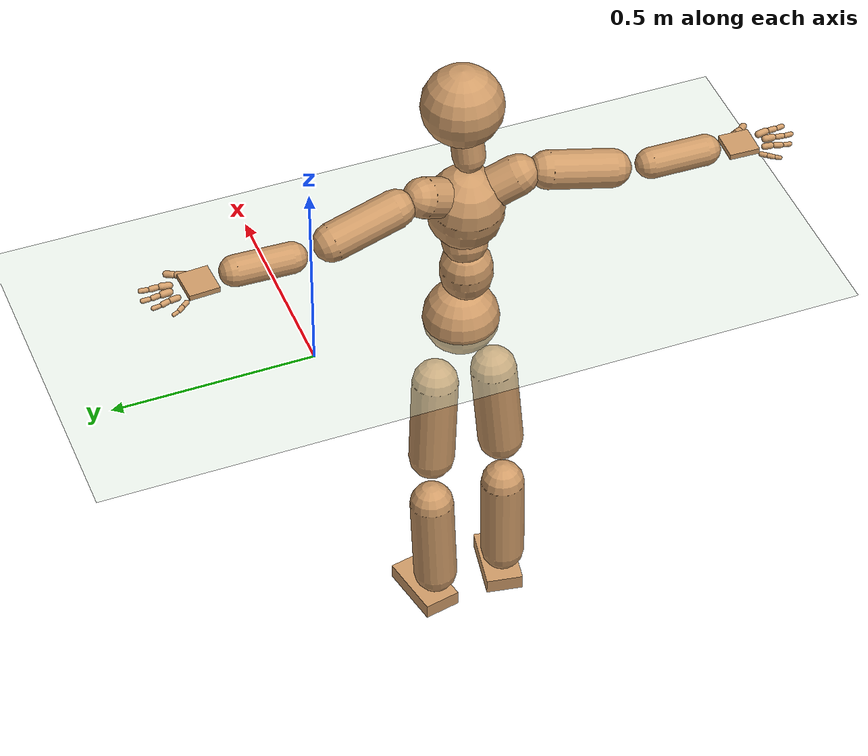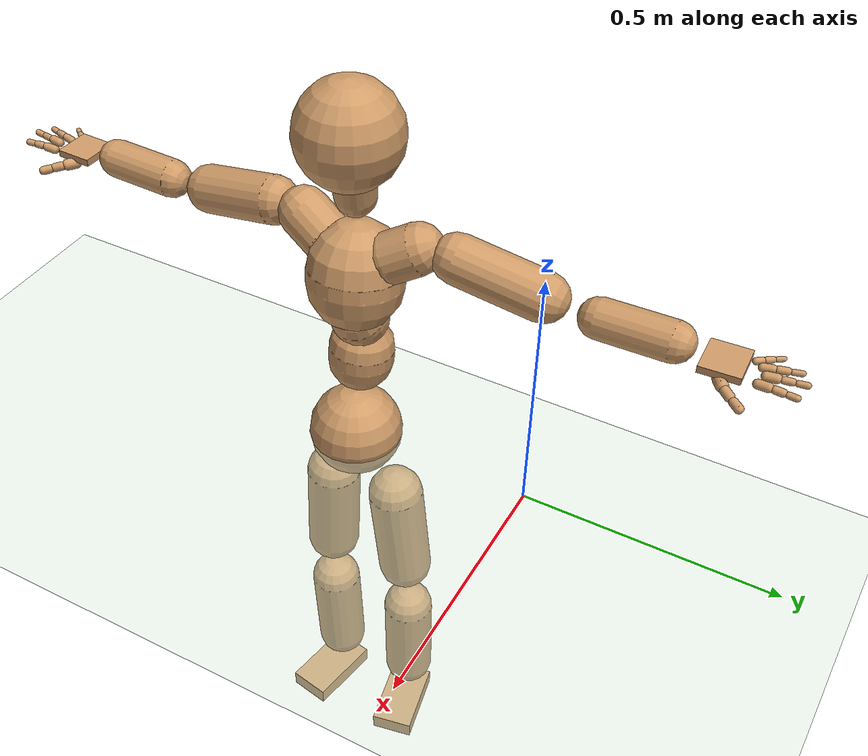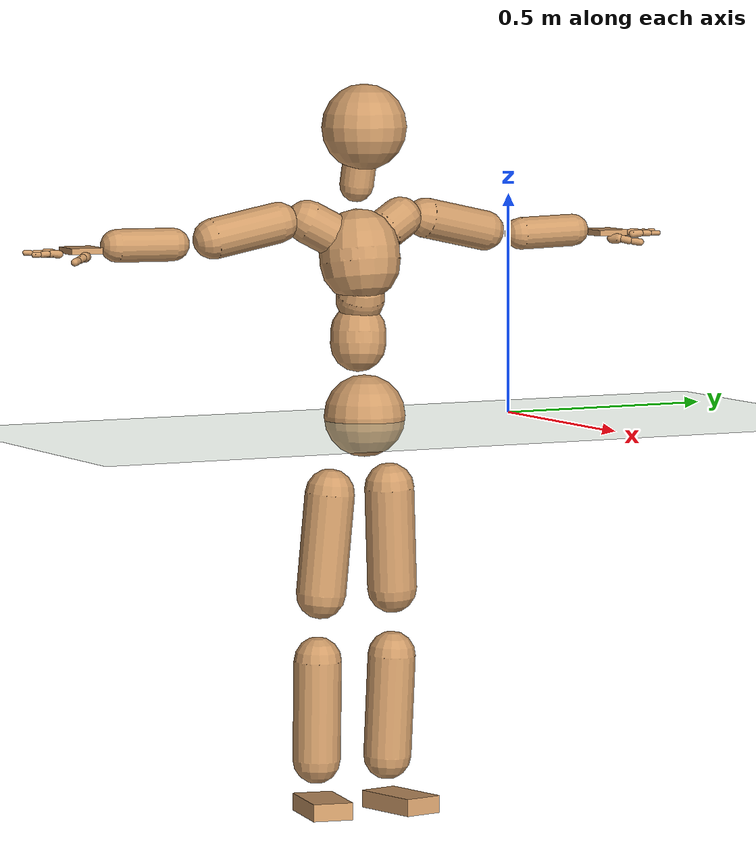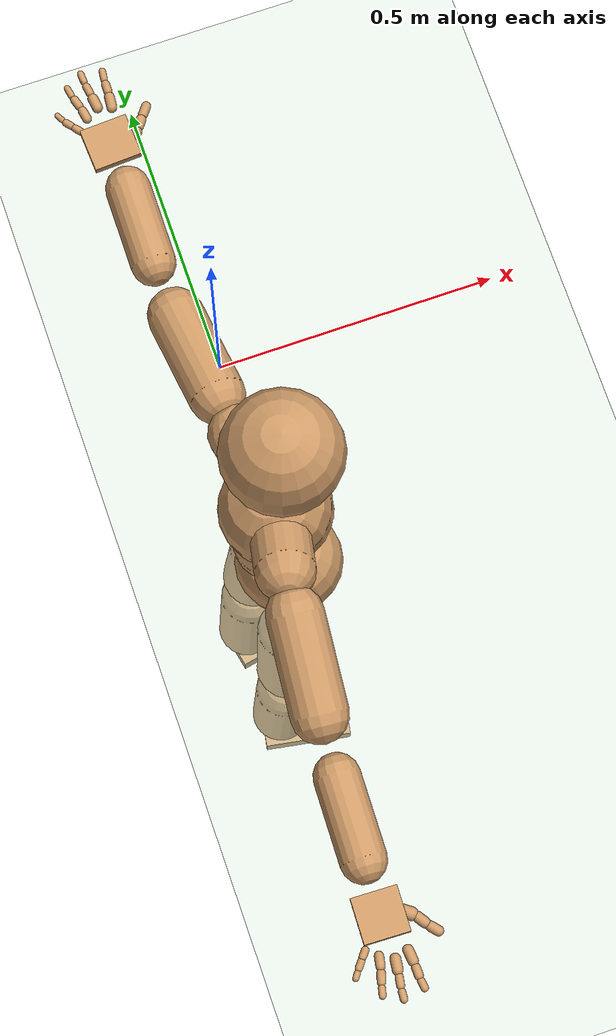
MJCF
<mujoco model="humanoid">
  <compiler coordinate="local" angle="radian"/>
  <default>
    <joint damping="0.0" armature="0.01" stiffness="0.0" limited="true"/>
    <geom conaffinity="1" condim="3" contype="7" margin="0.001" rgba="0.8 0.6 .4 1"/>
  </default>
  <asset>
    <texture type="skybox" builtin="gradient" rgb1=".4 .5 .6" rgb2="0 0 0" width="100" height="100"/>
    <texture builtin="flat" height="1278" mark="cross" markrgb="1 1 1" name="texgeom" random="0.01" rgb1="0.8 0.6 0.4" rgb2="0.8 0.6 0.4" type="cube" width="127"/>
    <texture builtin="checker" height="100" name="texplane" rgb1="0 0 0" rgb2="0.8 0.8 0.8" type="2d" width="100"/>
    <material name="MatPlane" reflectance="0.5" shininess="1" specular="1" texrepeat="60 60" texture="texplane"/>
    <material name="geom" texture="texgeom" texuniform="true"/>
  </asset>
  <worldbody>
    <light cutoff="100" diffuse="1 1 1" dir="-0 0 -1.3" directional="true" exponent="1" pos="0 0 1.3" specular=".1 .1 .1"/>
    <geom conaffinity="1" condim="3" name="floor" pos="0 0 0" rgba="0.8 0.9 0.8 1" size="100 100 .2" type="plane" material="MatPlane"/>
    <body name="Pelvis" pos="0.0004 -0.3688 0.0077">
      <freejoint name="Pelvis"/>
      <geom type="sphere" contype="1" conaffinity="1" density="500" size="0.0931" pos="0.0000 0.0000 0.0000" name="Pelvis"/>
      <body name="L_Hip" pos="-0.0204 0.0705 -0.0925">
        <joint name="L_Hip_x" type="hinge" pos="0 0 0" axis="1 0 0" stiffness="800" damping="80" armature="0.02" range="-180.0000 180.0000"/>
        <joint name="L_Hip_y" type="hinge" pos="0 0 0" axis="0 1 0" stiffness="800" damping="80" armature="0.02" range="-180.0000 180.0000"/>
        <joint name="L_Hip_z" type="hinge" pos="0 0 0" axis="0 0 1" stiffness="800" damping="80" armature="0.02" range="-180.0000 180.0000"/>
        <geom type="capsule" contype="1" conaffinity="1" density="500" fromto="-0.0049 0.0049 -0.0776 -0.0198 0.0198 -0.3102" size="0.0568" name="L_Hip"/>
        <body name="L_Knee" pos="-0.0247 0.0247 -0.3878">
          <joint name="L_Knee_x" type="hinge" pos="0 0 0" axis="1 0 0" stiffness="800" damping="80" armature="0.02" range="-180.0000 180.0000"/>
          <joint name="L_Knee_y" type="hinge" pos="0 0 0" axis="0 1 0" stiffness="800" damping="80" armature="0.02" range="-180.0000 180.0000"/>
          <joint name="L_Knee_z" type="hinge" pos="0 0 0" axis="0 0 1" stiffness="800" damping="80" armature="0.02" range="-180.0000 180.0000"/>
          <geom type="capsule" contype="1" conaffinity="1" density="500" fromto="-0.0043 -0.0015 -0.0780 -0.0171 -0.0061 -0.3121" size="0.0547" name="L_Knee"/>
          <body name="L_Ankle" pos="-0.0213 -0.0077 -0.3901">
            <joint name="L_Ankle_x" type="hinge" pos="0 0 0" axis="1 0 0" stiffness="800" damping="80" armature="0.02" range="-180.0000 180.0000"/>
            <joint name="L_Ankle_y" type="hinge" pos="0 0 0" axis="0 1 0" stiffness="800" damping="80" armature="0.02" range="-180.0000 180.0000"/>
            <joint name="L_Ankle_z" type="hinge" pos="0 0 0" axis="0 0 1" stiffness="800" damping="80" armature="0.02" range="-180.0000 180.0000"/>
            <geom type="box" contype="1" conaffinity="1" density="500" pos="0.0538 0.0108 -0.0220" size="0.0839 0.0462 0.0197" quat="0.9951 0.0000 0.0000 0.0987" name="L_Ankle"/>
            <body name="L_Toe" pos="0.1076 0.0215 -0.044">
              <joint name="L_Toe_x" type="hinge" pos="0 0 0" axis="1 0 0" stiffness="500" damping="50" armature="0.02" range="-180.0000 180.0000"/>
              <joint name="L_Toe_y" type="hinge" pos="0 0 0" axis="0 1 0" stiffness="500" damping="50" armature="0.02" range="-180.0000 180.0000"/>
              <joint name="L_Toe_z" type="hinge" pos="0 0 0" axis="0 0 1" stiffness="500" damping="50" armature="0.02" range="-180.0000 180.0000"/>
              <geom type="box" contype="1" conaffinity="1" density="500" pos="0.0000 0.0000 0.0226" size="0.0009 0.0023 0.001" quat="0.9944 0.0000 0.0000 0.1056" name="L_Toe"/>
            </body>
          </body>
        </body>
      </body>
      <body name="R_Hip" pos="-0.0218 -0.0697 -0.0994">
        <joint name="R_Hip_x" type="hinge" pos="0 0 0" axis="1 0 0" stiffness="800" damping="80" armature="0.02" range="-180.0000 180.0000"/>
        <joint name="R_Hip_y" type="hinge" pos="0 0 0" axis="0 1 0" stiffness="800" damping="80" armature="0.02" range="-180.0000 180.0000"/>
        <joint name="R_Hip_z" type="hinge" pos="0 0 0" axis="0 0 1" stiffness="800" damping="80" armature="0.02" range="-180.0000 180.0000"/>
        <geom type="capsule" contype="1" conaffinity="1" density="500" fromto="-0.0037 -0.0057 -0.0767 -0.0149 -0.0227 -0.3066" size="0.0566" name="R_Hip"/>
        <body name="R_Knee" pos="-0.0187 -0.0283 -0.3833">
          <joint name="R_Knee_x" type="hinge" pos="0 0 0" axis="1 0 0" stiffness="800" damping="80" armature="0.02" range="-180.0000 180.0000"/>
          <joint name="R_Knee_y" type="hinge" pos="0 0 0" axis="0 1 0" stiffness="800" damping="80" armature="0.02" range="-180.0000 180.0000"/>
          <joint name="R_Knee_z" type="hinge" pos="0 0 0" axis="0 0 1" stiffness="800" damping="80" armature="0.02" range="-180.0000 180.0000"/>
          <geom type="capsule" contype="1" conaffinity="1" density="500" fromto="-0.0035 0.0007 -0.0763 -0.0140 0.0026 -0.3052" size="0.0547" name="R_Knee"/>
          <body name="R_Ankle" pos="-0.0175 0.0033 -0.3815">
            <joint name="R_Ankle_x" type="hinge" pos="0 0 0" axis="1 0 0" stiffness="800" damping="80" armature="0.02" range="-180.0000 180.0000"/>
            <joint name="R_Ankle_y" type="hinge" pos="0 0 0" axis="0 1 0" stiffness="800" damping="80" armature="0.02" range="-180.0000 180.0000"/>
            <joint name="R_Ankle_z" type="hinge" pos="0 0 0" axis="0 0 1" stiffness="800" damping="80" armature="0.02" range="-180.0000 180.0000"/>
            <geom type="box" contype="1" conaffinity="1" density="500" pos="0.0506 -0.0088 -0.0238" size="0.0839 0.0462 0.0197" quat="0.9963 0.0000 0.0000 -0.0858" name="R_Ankle"/>
            <body name="R_Toe" pos="0.1011 -0.0175 -0.0477">
              <joint name="R_Toe_x" type="hinge" pos="0 0 0" axis="1 0 0" stiffness="500" damping="50" armature="0.02" range="-180.0000 180.0000"/>
              <joint name="R_Toe_y" type="hinge" pos="0 0 0" axis="0 1 0" stiffness="500" damping="50" armature="0.02" range="-180.0000 180.0000"/>
              <joint name="R_Toe_z" type="hinge" pos="0 0 0" axis="0 0 1" stiffness="500" damping="50" armature="0.02" range="-180.0000 180.0000"/>
              <geom type="box" contype="1" conaffinity="1" density="500" pos="0.0000 0.0000 0.0244" size="0.0009 0.0023 0.001" quat="0.9972 0.0000 0.0000 -0.0747" name="R_Toe"/>
            </body>
          </body>
        </body>
      </body>
      <body name="Torso" pos="-0.0246 -0.0048 0.1067">
        <joint name="Torso_x" type="hinge" pos="0 0 0" axis="1 0 0" stiffness="1000" damping="100" armature="0.02" range="-180.0000 180.0000"/>
        <joint name="Torso_y" type="hinge" pos="0 0 0" axis="0 1 0" stiffness="1000" damping="100" armature="0.02" range="-180.0000 180.0000"/>
        <joint name="Torso_z" type="hinge" pos="0 0 0" axis="0 0 1" stiffness="1000" damping="100" armature="0.02" range="-180.0000 180.0000"/>
        <geom type="capsule" contype="1" conaffinity="1" density="500" fromto="-0.0065 0.0046 0.0816 -0.0043 0.0031 0.0544" size="0.0636" name="Torso"/>
        <body name="Spine" pos="-0.0108 0.0077 0.136">
          <joint name="Spine_x" type="hinge" pos="0 0 0" axis="1 0 0" stiffness="1000" damping="100" armature="0.02" range="-180.0000 180.0000"/>
          <joint name="Spine_y" type="hinge" pos="0 0 0" axis="0 1 0" stiffness="1000" damping="100" armature="0.02" range="-180.0000 180.0000"/>
          <joint name="Spine_z" type="hinge" pos="0 0 0" axis="0 0 1" stiffness="1000" damping="100" armature="0.02" range="-180.0000 180.0000"/>
          <geom type="capsule" contype="1" conaffinity="1" density="500" fromto="0.0149 -0.0022 0.0296 0.0099 -0.0015 0.0197" size="0.0557" name="Spine"/>
          <body name="Chest" pos="0.0248 -0.0037 0.0493">
            <joint name="Chest_x" type="hinge" pos="0 0 0" axis="1 0 0" stiffness="1000" damping="100" armature="0.02" range="-180.0000 180.0000"/>
            <joint name="Chest_y" type="hinge" pos="0 0 0" axis="0 1 0" stiffness="1000" damping="100" armature="0.02" range="-180.0000 180.0000"/>
            <joint name="Chest_z" type="hinge" pos="0 0 0" axis="0 0 1" stiffness="1000" damping="100" armature="0.02" range="-180.0000 180.0000"/>
            <geom type="capsule" contype="1" conaffinity="1" density="500" fromto="-0.0118 -0.0016 0.0841 -0.0078 -0.0010 0.0560" size="0.0917" name="Chest"/>
            <body name="Neck" pos="-0.0267 -0.0053 0.1958">
              <joint name="Neck_x" type="hinge" pos="0 0 0" axis="1 0 0" stiffness="500" damping="50" armature="0.02" range="-180.0000 180.0000"/>
              <joint name="Neck_y" type="hinge" pos="0 0 0" axis="0 1 0" stiffness="500" damping="50" armature="0.02" range="-180.0000 180.0000"/>
              <joint name="Neck_z" type="hinge" pos="0 0 0" axis="0 0 1" stiffness="500" damping="50" armature="0.02" range="-180.0000 180.0000"/>
              <geom type="capsule" contype="1" conaffinity="1" density="500" fromto="0.0063 0.0016 0.0329 0.0252 0.0065 0.1316" size="0.0388" name="Neck"/>
              <body name="Head" pos="0.0315 0.0081 0.1645">
                <joint name="Head_x" type="hinge" pos="0 0 0" axis="1 0 0" stiffness="500" damping="50" armature="0.02" range="-180.0000 180.0000"/>
                <joint name="Head_y" type="hinge" pos="0 0 0" axis="0 1 0" stiffness="500" damping="50" armature="0.02" range="-180.0000 180.0000"/>
                <joint name="Head_z" type="hinge" pos="0 0 0" axis="0 0 1" stiffness="500" damping="50" armature="0.02" range="-180.0000 180.0000"/>
                <geom type="sphere" contype="1" conaffinity="1" density="500" size="0.0972" pos="0.0000 0.0000 0.0000" name="Head"/>
              </body>
            </body>
            <body name="L_Thorax" pos="-0.0129 0.0478 0.1143">
              <joint name="L_Thorax_x" type="hinge" pos="0 0 0" axis="1 0 0" stiffness="500" damping="50" armature="0.02" range="-180.0000 180.0000"/>
              <joint name="L_Thorax_y" type="hinge" pos="0 0 0" axis="0 1 0" stiffness="500" damping="50" armature="0.02" range="-180.0000 180.0000"/>
              <joint name="L_Thorax_z" type="hinge" pos="0 0 0" axis="0 0 1" stiffness="500" damping="50" armature="0.02" range="-180.0000 180.0000"/>
              <geom type="capsule" contype="1" conaffinity="1" density="500" fromto="-0.0049 0.0163 0.0090 -0.0196 0.0654 0.0359" size="0.048" name="L_Thorax"/>
              <body name="L_Shoulder" pos="-0.0245 0.0817 0.0449">
                <joint name="L_Shoulder_x" type="hinge" pos="0 0 0" axis="1 0 0" stiffness="500" damping="50" armature="0.02" range="-180.0000 180.0000"/>
                <joint name="L_Shoulder_y" type="hinge" pos="0 0 0" axis="0 1 0" stiffness="500" damping="50" armature="0.02" range="-180.0000 180.0000"/>
                <joint name="L_Shoulder_z" type="hinge" pos="0 0 0" axis="0 0 1" stiffness="500" damping="50" armature="0.02" range="-180.0000 180.0000"/>
                <geom type="capsule" contype="1" conaffinity="1" density="500" fromto="-0.0058 0.0535 -0.0116 -0.0232 0.2139 -0.0462" size="0.0459" name="L_Shoulder"/>
                <body name="L_Elbow" pos="-0.029 0.2674 -0.0578">
                  <joint name="L_Elbow_x" type="hinge" pos="0 0 0" axis="1 0 0" stiffness="500" damping="50" armature="0.02" range="-720.0000 720.0000"/>
                  <joint name="L_Elbow_y" type="hinge" pos="0 0 0" axis="0 1 0" stiffness="500" damping="50" armature="0.02" range="-720.0000 720.0000"/>
                  <joint name="L_Elbow_z" type="hinge" pos="0 0 0" axis="0 0 1" stiffness="500" damping="50" armature="0.02" range="-720.0000 720.0000"/>
                  <geom type="capsule" contype="1" conaffinity="1" density="500" fromto="0.0004 0.0449 0.0013 0.0014 0.1795 0.0051" size="0.037" name="L_Elbow"/>
                  <body name="L_Wrist" pos="0.0018 0.2244 0.0064">
                    <joint name="L_Wrist_x" type="hinge" pos="0 0 0" axis="1 0 0" stiffness="300" damping="30" armature="0.02" range="-180.0000 180.0000"/>
                    <joint name="L_Wrist_y" type="hinge" pos="0 0 0" axis="0 1 0" stiffness="300" damping="30" armature="0.02" range="-180.0000 180.0000"/>
                    <joint name="L_Wrist_z" type="hinge" pos="0 0 0" axis="0 0 1" stiffness="300" damping="30" armature="0.02" range="-180.0000 180.0000"/>
                    <geom type="box" contype="1" conaffinity="1" density="500" pos="-0.0022 0.0415 -0.0085" size="0.0367 0.0397 0.0068" quat="0.7256 0.0000 0.0000 -0.6882" name="L_Wrist"/>
                    <body name="L_Index1" pos="0.0189 0.0976 -0.0148">
                      <joint name="L_Index1_x" type="hinge" pos="0 0 0" axis="1 0 0" stiffness="100" damping="10" armature="0.02" range="-180.0000 180.0000"/>
                      <joint name="L_Index1_y" type="hinge" pos="0 0 0" axis="0 1 0" stiffness="100" damping="10" armature="0.02" range="-180.0000 180.0000"/>
                      <joint name="L_Index1_z" type="hinge" pos="0 0 0" axis="0 0 1" stiffness="100" damping="10" armature="0.02" range="-180.0000 180.0000"/>
                      <geom type="capsule" contype="1" conaffinity="1" density="500" fromto="0.0005 0.0061 0.0005 0.0022 0.0246 0.0021" size="0.0085" name="L_Index1"/>
                      <body name="L_Index2" pos="0.0027 0.0307 0.0027">
                        <joint name="L_Index2_x" type="hinge" pos="0 0 0" axis="1 0 0" stiffness="100" damping="10" armature="0.02" range="-180.0000 180.0000"/>
                        <joint name="L_Index2_y" type="hinge" pos="0 0 0" axis="0 1 0" stiffness="100" damping="10" armature="0.02" range="-180.0000 180.0000"/>
                        <joint name="L_Index2_z" type="hinge" pos="0 0 0" axis="0 0 1" stiffness="100" damping="10" armature="0.02" range="-180.0000 180.0000"/>
                        <geom type="capsule" contype="1" conaffinity="1" density="500" fromto="0.0001 0.0044 -0.0003 0.0004 0.0175 -0.0011" size="0.0071" name="L_Index2"/>
                        <body name="L_Index3" pos="0.0005 0.0218 -0.0014">
                          <joint name="L_Index3_x" type="hinge" pos="0 0 0" axis="1 0 0" stiffness="100" damping="10" armature="0.02" range="-180.0000 180.0000"/>
                          <joint name="L_Index3_y" type="hinge" pos="0 0 0" axis="0 1 0" stiffness="100" damping="10" armature="0.02" range="-180.0000 180.0000"/>
                          <joint name="L_Index3_z" type="hinge" pos="0 0 0" axis="0 0 1" stiffness="100" damping="10" armature="0.02" range="-180.0000 180.0000"/>
                          <geom type="capsule" contype="1" conaffinity="1" density="500" fromto="0.0005 0.0048 0.0001 0.0020 0.0191 0.0005" size="0.0059" name="L_Index3"/>
                        </body>
                      </body>
                    </body>
                    <body name="L_Middle1" pos="-0.0025 0.1043 -0.0127">
                      <joint name="L_Middle1_x" type="hinge" pos="0 0 0" axis="1 0 0" stiffness="100" damping="10" armature="0.02" range="-180.0000 180.0000"/>
                      <joint name="L_Middle1_y" type="hinge" pos="0 0 0" axis="0 1 0" stiffness="100" damping="10" armature="0.02" range="-180.0000 180.0000"/>
                      <joint name="L_Middle1_z" type="hinge" pos="0 0 0" axis="0 0 1" stiffness="100" damping="10" armature="0.02" range="-180.0000 180.0000"/>
                      <geom type="capsule" contype="1" conaffinity="1" density="500" fromto="-0.0007 0.0058 0.0003 -0.0030 0.0232 0.0010" size="0.0086" name="L_Middle1"/>
                      <body name="L_Middle2" pos="-0.0037 0.029 0.0013">
                        <joint name="L_Middle2_x" type="hinge" pos="0 0 0" axis="1 0 0" stiffness="100" damping="10" armature="0.02" range="-180.0000 180.0000"/>
                        <joint name="L_Middle2_y" type="hinge" pos="0 0 0" axis="0 1 0" stiffness="100" damping="10" armature="0.02" range="-180.0000 180.0000"/>
                        <joint name="L_Middle2_z" type="hinge" pos="0 0 0" axis="0 0 1" stiffness="100" damping="10" armature="0.02" range="-180.0000 180.0000"/>
                        <geom type="capsule" contype="1" conaffinity="1" density="500" fromto="-0.0007 0.0045 -0.0001 -0.0029 0.0180 -0.0004" size="0.0065" name="L_Middle2"/>
                        <body name="L_Middle3" pos="-0.0037 0.0225 -0.0005">
                          <joint name="L_Middle3_x" type="hinge" pos="0 0 0" axis="1 0 0" stiffness="100" damping="10" armature="0.02" range="-180.0000 180.0000"/>
                          <joint name="L_Middle3_y" type="hinge" pos="0 0 0" axis="0 1 0" stiffness="100" damping="10" armature="0.02" range="-180.0000 180.0000"/>
                          <joint name="L_Middle3_z" type="hinge" pos="0 0 0" axis="0 0 1" stiffness="100" damping="10" armature="0.02" range="-180.0000 180.0000"/>
                          <geom type="capsule" contype="1" conaffinity="1" density="500" fromto="-0.0003 0.0049 0.0003 -0.0013 0.0196 0.0012" size="0.0057" name="L_Middle3"/>
                        </body>
                      </body>
                    </body>
                    <body name="L_Pinky1" pos="-0.0392 0.08 -0.0201">
                      <joint name="L_Pinky1_x" type="hinge" pos="0 0 0" axis="1 0 0" stiffness="100" damping="10" armature="0.02" range="-180.0000 180.0000"/>
                      <joint name="L_Pinky1_y" type="hinge" pos="0 0 0" axis="0 1 0" stiffness="100" damping="10" armature="0.02" range="-180.0000 180.0000"/>
                      <joint name="L_Pinky1_z" type="hinge" pos="0 0 0" axis="0 0 1" stiffness="100" damping="10" armature="0.02" range="-180.0000 180.0000"/>
                      <geom type="capsule" contype="1" conaffinity="1" density="500" fromto="-0.0023 0.0028 -0.0001 -0.0091 0.0112 -0.0003" size="0.0062" name="L_Pinky1"/>
                      <body name="L_Pinky2" pos="-0.0114 0.0139 -0.0004">
                        <joint name="L_Pinky2_x" type="hinge" pos="0 0 0" axis="1 0 0" stiffness="100" damping="10" armature="0.02" range="-180.0000 180.0000"/>
                        <joint name="L_Pinky2_y" type="hinge" pos="0 0 0" axis="0 1 0" stiffness="100" damping="10" armature="0.02" range="-180.0000 180.0000"/>
                        <joint name="L_Pinky2_z" type="hinge" pos="0 0 0" axis="0 0 1" stiffness="100" damping="10" armature="0.02" range="-180.0000 180.0000"/>
                        <geom type="capsule" contype="1" conaffinity="1" density="500" fromto="-0.0022 0.0029 -0.0001 -0.0089 0.0115 -0.0006" size="0.006" name="L_Pinky2"/>
                        <body name="L_Pinky3" pos="-0.0111 0.0144 -0.0007">
                          <joint name="L_Pinky3_x" type="hinge" pos="0 0 0" axis="1 0 0" stiffness="100" damping="10" armature="0.02" range="-180.0000 180.0000"/>
                          <joint name="L_Pinky3_y" type="hinge" pos="0 0 0" axis="0 1 0" stiffness="100" damping="10" armature="0.02" range="-180.0000 180.0000"/>
                          <joint name="L_Pinky3_z" type="hinge" pos="0 0 0" axis="0 0 1" stiffness="100" damping="10" armature="0.02" range="-180.0000 180.0000"/>
                          <geom type="capsule" contype="1" conaffinity="1" density="500" fromto="-0.0018 0.0033 0.0003 -0.0073 0.0131 0.0010" size="0.0047" name="L_Pinky3"/>
                        </body>
                      </body>
                    </body>
                    <body name="L_Ring1" pos="-0.024 0.0927 -0.0153">
                      <joint name="L_Ring1_x" type="hinge" pos="0 0 0" axis="1 0 0" stiffness="100" damping="10" armature="0.02" range="-180.0000 180.0000"/>
                      <joint name="L_Ring1_y" type="hinge" pos="0 0 0" axis="0 1 0" stiffness="100" damping="10" armature="0.02" range="-180.0000 180.0000"/>
                      <joint name="L_Ring1_z" type="hinge" pos="0 0 0" axis="0 0 1" stiffness="100" damping="10" armature="0.02" range="-180.0000 180.0000"/>
                      <geom type="capsule" contype="1" conaffinity="1" density="500" fromto="-0.0010 0.0053 0.0003 -0.0040 0.0210 0.0013" size="0.0075" name="L_Ring1"/>
                      <body name="L_Ring2" pos="-0.005 0.0263 0.0016">
                        <joint name="L_Ring2_x" type="hinge" pos="0 0 0" axis="1 0 0" stiffness="100" damping="10" armature="0.02" range="-180.0000 180.0000"/>
                        <joint name="L_Ring2_y" type="hinge" pos="0 0 0" axis="0 1 0" stiffness="100" damping="10" armature="0.02" range="-180.0000 180.0000"/>
                        <joint name="L_Ring2_z" type="hinge" pos="0 0 0" axis="0 0 1" stiffness="100" damping="10" armature="0.02" range="-180.0000 180.0000"/>
                        <geom type="capsule" contype="1" conaffinity="1" density="500" fromto="-0.0014 0.0043 -0.0002 -0.0054 0.0173 -0.0007" size="0.0069" name="L_Ring2"/>
                        <body name="L_Ring3" pos="-0.0068 0.0216 -0.0008">
                          <joint name="L_Ring3_x" type="hinge" pos="0 0 0" axis="1 0 0" stiffness="100" damping="10" armature="0.02" range="-180.0000 180.0000"/>
                          <joint name="L_Ring3_y" type="hinge" pos="0 0 0" axis="0 1 0" stiffness="100" damping="10" armature="0.02" range="-180.0000 180.0000"/>
                          <joint name="L_Ring3_z" type="hinge" pos="0 0 0" axis="0 0 1" stiffness="100" damping="10" armature="0.02" range="-180.0000 180.0000"/>
                          <geom type="capsule" contype="1" conaffinity="1" density="500" fromto="-0.0010 0.0047 0.0002 -0.0038 0.0189 0.0009" size="0.0054" name="L_Ring3"/>
                        </body>
                      </body>
                    </body>
                    <body name="L_Thumb1" pos="0.0248 0.0403 -0.0218">
                      <joint name="L_Thumb1_x" type="hinge" pos="0 0 0" axis="1 0 0" stiffness="100" damping="10" armature="0.02" range="-180.0000 180.0000"/>
                      <joint name="L_Thumb1_y" type="hinge" pos="0 0 0" axis="0 1 0" stiffness="100" damping="10" armature="0.02" range="-180.0000 180.0000"/>
                      <joint name="L_Thumb1_z" type="hinge" pos="0 0 0" axis="0 0 1" stiffness="100" damping="10" armature="0.02" range="-180.0000 180.0000"/>
                      <geom type="capsule" contype="1" conaffinity="1" density="500" fromto="0.0045 0.0033 0.0001 0.0182 0.0131 0.0005" size="0.0111" name="L_Thumb1"/>
                      <body name="L_Thumb2" pos="0.0227 0.0164 0.0006">
                        <joint name="L_Thumb2_x" type="hinge" pos="0 0 0" axis="1 0 0" stiffness="100" damping="10" armature="0.02" range="-180.0000 180.0000"/>
                        <joint name="L_Thumb2_y" type="hinge" pos="0 0 0" axis="0 1 0" stiffness="100" damping="10" armature="0.02" range="-180.0000 180.0000"/>
                        <joint name="L_Thumb2_z" type="hinge" pos="0 0 0" axis="0 0 1" stiffness="100" damping="10" armature="0.02" range="-180.0000 180.0000"/>
                        <geom type="capsule" contype="1" conaffinity="1" density="500" fromto="0.0028 0.0039 -0.0011 0.0111 0.0158 -0.0043" size="0.0087" name="L_Thumb2"/>
                        <body name="L_Thumb3" pos="0.0139 0.0197 -0.0054">
                          <joint name="L_Thumb3_x" type="hinge" pos="0 0 0" axis="1 0 0" stiffness="100" damping="10" armature="0.02" range="-180.0000 180.0000"/>
                          <joint name="L_Thumb3_y" type="hinge" pos="0 0 0" axis="0 1 0" stiffness="100" damping="10" armature="0.02" range="-180.0000 180.0000"/>
                          <joint name="L_Thumb3_z" type="hinge" pos="0 0 0" axis="0 0 1" stiffness="100" damping="10" armature="0.02" range="-180.0000 180.0000"/>
                          <geom type="capsule" contype="1" conaffinity="1" density="500" fromto="0.0032 0.0043 -0.0007 0.0127 0.0174 -0.0027" size="0.0081" name="L_Thumb3"/>
                        </body>
                      </body>
                    </body>
                  </body>
                </body>
              </body>
            </body>
            <body name="R_Thorax" pos="-0.0192 -0.0503 0.1101">
              <joint name="R_Thorax_x" type="hinge" pos="0 0 0" axis="1 0 0" stiffness="500" damping="50" armature="0.02" range="-180.0000 180.0000"/>
              <joint name="R_Thorax_y" type="hinge" pos="0 0 0" axis="0 1 0" stiffness="500" damping="50" armature="0.02" range="-180.0000 180.0000"/>
              <joint name="R_Thorax_z" type="hinge" pos="0 0 0" axis="0 0 1" stiffness="500" damping="50" armature="0.02" range="-180.0000 180.0000"/>
              <geom type="capsule" contype="1" conaffinity="1" density="500" fromto="-0.0037 -0.0176 0.0096 -0.0147 -0.0703 0.0385" size="0.049" name="R_Thorax"/>
              <body name="R_Shoulder" pos="-0.0184 -0.0879 0.0482">
                <joint name="R_Shoulder_x" type="hinge" pos="0 0 0" axis="1 0 0" stiffness="500" damping="50" armature="0.02" range="-180.0000 180.0000"/>
                <joint name="R_Shoulder_y" type="hinge" pos="0 0 0" axis="0 1 0" stiffness="500" damping="50" armature="0.02" range="-180.0000 180.0000"/>
                <joint name="R_Shoulder_z" type="hinge" pos="0 0 0" axis="0 0 1" stiffness="500" damping="50" armature="0.02" range="-180.0000 180.0000"/>
                <geom type="capsule" contype="1" conaffinity="1" density="500" fromto="-0.0043 -0.0516 -0.0107 -0.0173 -0.2066 -0.0429" size="0.0463" name="R_Shoulder"/>
                <body name="R_Elbow" pos="-0.0217 -0.2582 -0.0536">
                  <joint name="R_Elbow_x" type="hinge" pos="0 0 0" axis="1 0 0" stiffness="500" damping="50" armature="0.02" range="-720.0000 720.0000"/>
                  <joint name="R_Elbow_y" type="hinge" pos="0 0 0" axis="0 1 0" stiffness="500" damping="50" armature="0.02" range="-720.0000 720.0000"/>
                  <joint name="R_Elbow_z" type="hinge" pos="0 0 0" axis="0 0 1" stiffness="500" damping="50" armature="0.02" range="-720.0000 720.0000"/>
                  <geom type="capsule" contype="1" conaffinity="1" density="500" fromto="-0.0013 -0.0450 0.0005 -0.0054 -0.1802 0.0018" size="0.0372" name="R_Elbow"/>
                  <body name="R_Wrist" pos="-0.0067 -0.2252 0.0023">
                    <joint name="R_Wrist_x" type="hinge" pos="0 0 0" axis="1 0 0" stiffness="300" damping="30" armature="0.02" range="-180.0000 180.0000"/>
                    <joint name="R_Wrist_y" type="hinge" pos="0 0 0" axis="0 1 0" stiffness="300" damping="30" armature="0.02" range="-180.0000 180.0000"/>
                    <joint name="R_Wrist_z" type="hinge" pos="0 0 0" axis="0 0 1" stiffness="300" damping="30" armature="0.02" range="-180.0000 180.0000"/>
                    <geom type="box" contype="1" conaffinity="1" density="500" pos="-0.0015 -0.0409 -0.0081" size="0.0367 0.0371 0.007" quat="0.7197 0.0000 0.0000 0.6942" name="R_Wrist"/>
                    <body name="R_Index1" pos="0.0204 -0.0965 -0.014">
                      <joint name="R_Index1_x" type="hinge" pos="0 0 0" axis="1 0 0" stiffness="100" damping="10" armature="0.02" range="-180.0000 180.0000"/>
                      <joint name="R_Index1_y" type="hinge" pos="0 0 0" axis="0 1 0" stiffness="100" damping="10" armature="0.02" range="-180.0000 180.0000"/>
                      <joint name="R_Index1_z" type="hinge" pos="0 0 0" axis="0 0 1" stiffness="100" damping="10" armature="0.02" range="-180.0000 180.0000"/>
                      <geom type="capsule" contype="1" conaffinity="1" density="500" fromto="0.0005 -0.0061 0.0005 0.0022 -0.0246 0.0021" size="0.0085" name="R_Index1"/>
                      <body name="R_Index2" pos="0.0027 -0.0307 0.0027">
                        <joint name="R_Index2_x" type="hinge" pos="0 0 0" axis="1 0 0" stiffness="100" damping="10" armature="0.02" range="-180.0000 180.0000"/>
                        <joint name="R_Index2_y" type="hinge" pos="0 0 0" axis="0 1 0" stiffness="100" damping="10" armature="0.02" range="-180.0000 180.0000"/>
                        <joint name="R_Index2_z" type="hinge" pos="0 0 0" axis="0 0 1" stiffness="100" damping="10" armature="0.02" range="-180.0000 180.0000"/>
                        <geom type="capsule" contype="1" conaffinity="1" density="500" fromto="0.0001 -0.0044 -0.0003 0.0004 -0.0175 -0.0011" size="0.0071" name="R_Index2"/>
                        <body name="R_Index3" pos="0.0005 -0.0218 -0.0014">
                          <joint name="R_Index3_x" type="hinge" pos="0 0 0" axis="1 0 0" stiffness="100" damping="10" armature="0.02" range="-180.0000 180.0000"/>
                          <joint name="R_Index3_y" type="hinge" pos="0 0 0" axis="0 1 0" stiffness="100" damping="10" armature="0.02" range="-180.0000 180.0000"/>
                          <joint name="R_Index3_z" type="hinge" pos="0 0 0" axis="0 0 1" stiffness="100" damping="10" armature="0.02" range="-180.0000 180.0000"/>
                          <geom type="capsule" contype="1" conaffinity="1" density="500" fromto="0.0005 -0.0040 0.0001 0.0020 -0.0159 0.0005" size="0.0062" name="R_Index3"/>
                        </body>
                      </body>
                    </body>
                    <body name="R_Middle1" pos="-0.001 -0.1032 -0.0119">
                      <joint name="R_Middle1_x" type="hinge" pos="0 0 0" axis="1 0 0" stiffness="100" damping="10" armature="0.02" range="-180.0000 180.0000"/>
                      <joint name="R_Middle1_y" type="hinge" pos="0 0 0" axis="0 1 0" stiffness="100" damping="10" armature="0.02" range="-180.0000 180.0000"/>
                      <joint name="R_Middle1_z" type="hinge" pos="0 0 0" axis="0 0 1" stiffness="100" damping="10" armature="0.02" range="-180.0000 180.0000"/>
                      <geom type="capsule" contype="1" conaffinity="1" density="500" fromto="-0.0007 -0.0058 0.0003 -0.0030 -0.0232 0.0010" size="0.0086" name="R_Middle1"/>
                      <body name="R_Middle2" pos="-0.0037 -0.029 0.0013">
                        <joint name="R_Middle2_x" type="hinge" pos="0 0 0" axis="1 0 0" stiffness="100" damping="10" armature="0.02" range="-180.0000 180.0000"/>
                        <joint name="R_Middle2_y" type="hinge" pos="0 0 0" axis="0 1 0" stiffness="100" damping="10" armature="0.02" range="-180.0000 180.0000"/>
                        <joint name="R_Middle2_z" type="hinge" pos="0 0 0" axis="0 0 1" stiffness="100" damping="10" armature="0.02" range="-180.0000 180.0000"/>
                        <geom type="capsule" contype="1" conaffinity="1" density="500" fromto="-0.0007 -0.0045 -0.0001 -0.0029 -0.0180 -0.0004" size="0.0065" name="R_Middle2"/>
                        <body name="R_Middle3" pos="-0.0037 -0.0225 -0.0005">
                          <joint name="R_Middle3_x" type="hinge" pos="0 0 0" axis="1 0 0" stiffness="100" damping="10" armature="0.02" range="-180.0000 180.0000"/>
                          <joint name="R_Middle3_y" type="hinge" pos="0 0 0" axis="0 1 0" stiffness="100" damping="10" armature="0.02" range="-180.0000 180.0000"/>
                          <joint name="R_Middle3_z" type="hinge" pos="0 0 0" axis="0 0 1" stiffness="100" damping="10" armature="0.02" range="-180.0000 180.0000"/>
                          <geom type="capsule" contype="1" conaffinity="1" density="500" fromto="-0.0003 -0.0041 0.0003 -0.0013 -0.0164 0.0012" size="0.006" name="R_Middle3"/>
                        </body>
                      </body>
                    </body>
                    <body name="R_Pinky1" pos="-0.0377 -0.0789 -0.0193">
                      <joint name="R_Pinky1_x" type="hinge" pos="0 0 0" axis="1 0 0" stiffness="100" damping="10" armature="0.02" range="-180.0000 180.0000"/>
                      <joint name="R_Pinky1_y" type="hinge" pos="0 0 0" axis="0 1 0" stiffness="100" damping="10" armature="0.02" range="-180.0000 180.0000"/>
                      <joint name="R_Pinky1_z" type="hinge" pos="0 0 0" axis="0 0 1" stiffness="100" damping="10" armature="0.02" range="-180.0000 180.0000"/>
                      <geom type="capsule" contype="1" conaffinity="1" density="500" fromto="-0.0023 -0.0028 -0.0001 -0.0091 -0.0112 -0.0003" size="0.0062" name="R_Pinky1"/>
                      <body name="R_Pinky2" pos="-0.0114 -0.0139 -0.0004">
                        <joint name="R_Pinky2_x" type="hinge" pos="0 0 0" axis="1 0 0" stiffness="100" damping="10" armature="0.02" range="-180.0000 180.0000"/>
                        <joint name="R_Pinky2_y" type="hinge" pos="0 0 0" axis="0 1 0" stiffness="100" damping="10" armature="0.02" range="-180.0000 180.0000"/>
                        <joint name="R_Pinky2_z" type="hinge" pos="0 0 0" axis="0 0 1" stiffness="100" damping="10" armature="0.02" range="-180.0000 180.0000"/>
                        <geom type="capsule" contype="1" conaffinity="1" density="500" fromto="-0.0022 -0.0029 -0.0001 -0.0089 -0.0115 -0.0006" size="0.006" name="R_Pinky2"/>
                        <body name="R_Pinky3" pos="-0.0111 -0.0144 -0.0007">
                          <joint name="R_Pinky3_x" type="hinge" pos="0 0 0" axis="1 0 0" stiffness="100" damping="10" armature="0.02" range="-180.0000 180.0000"/>
                          <joint name="R_Pinky3_y" type="hinge" pos="0 0 0" axis="0 1 0" stiffness="100" damping="10" armature="0.02" range="-180.0000 180.0000"/>
                          <joint name="R_Pinky3_z" type="hinge" pos="0 0 0" axis="0 0 1" stiffness="100" damping="10" armature="0.02" range="-180.0000 180.0000"/>
                          <geom type="capsule" contype="1" conaffinity="1" density="500" fromto="-0.0018 -0.0025 0.0003 -0.0073 -0.0099 0.0010" size="0.005" name="R_Pinky3"/>
                        </body>
                      </body>
                    </body>
                    <body name="R_Ring1" pos="-0.0225 -0.0916 -0.0145">
                      <joint name="R_Ring1_x" type="hinge" pos="0 0 0" axis="1 0 0" stiffness="100" damping="10" armature="0.02" range="-180.0000 180.0000"/>
                      <joint name="R_Ring1_y" type="hinge" pos="0 0 0" axis="0 1 0" stiffness="100" damping="10" armature="0.02" range="-180.0000 180.0000"/>
                      <joint name="R_Ring1_z" type="hinge" pos="0 0 0" axis="0 0 1" stiffness="100" damping="10" armature="0.02" range="-180.0000 180.0000"/>
                      <geom type="capsule" contype="1" conaffinity="1" density="500" fromto="-0.0010 -0.0053 0.0003 -0.0040 -0.0210 0.0013" size="0.0075" name="R_Ring1"/>
                      <body name="R_Ring2" pos="-0.005 -0.0263 0.0016">
                        <joint name="R_Ring2_x" type="hinge" pos="0 0 0" axis="1 0 0" stiffness="100" damping="10" armature="0.02" range="-180.0000 180.0000"/>
                        <joint name="R_Ring2_y" type="hinge" pos="0 0 0" axis="0 1 0" stiffness="100" damping="10" armature="0.02" range="-180.0000 180.0000"/>
                        <joint name="R_Ring2_z" type="hinge" pos="0 0 0" axis="0 0 1" stiffness="100" damping="10" armature="0.02" range="-180.0000 180.0000"/>
                        <geom type="capsule" contype="1" conaffinity="1" density="500" fromto="-0.0014 -0.0043 -0.0002 -0.0054 -0.0173 -0.0007" size="0.0069" name="R_Ring2"/>
                        <body name="R_Ring3" pos="-0.0068 -0.0216 -0.0008">
                          <joint name="R_Ring3_x" type="hinge" pos="0 0 0" axis="1 0 0" stiffness="100" damping="10" armature="0.02" range="-180.0000 180.0000"/>
                          <joint name="R_Ring3_y" type="hinge" pos="0 0 0" axis="0 1 0" stiffness="100" damping="10" armature="0.02" range="-180.0000 180.0000"/>
                          <joint name="R_Ring3_z" type="hinge" pos="0 0 0" axis="0 0 1" stiffness="100" damping="10" armature="0.02" range="-180.0000 180.0000"/>
                          <geom type="capsule" contype="1" conaffinity="1" density="500" fromto="-0.0010 -0.0039 0.0002 -0.0038 -0.0157 0.0009" size="0.0057" name="R_Ring3"/>
                        </body>
                      </body>
                    </body>
                    <body name="R_Thumb1" pos="0.0262 -0.0392 -0.021">
                      <joint name="R_Thumb1_x" type="hinge" pos="0 0 0" axis="1 0 0" stiffness="100" damping="10" armature="0.02" range="-180.0000 180.0000"/>
                      <joint name="R_Thumb1_y" type="hinge" pos="0 0 0" axis="0 1 0" stiffness="100" damping="10" armature="0.02" range="-180.0000 180.0000"/>
                      <joint name="R_Thumb1_z" type="hinge" pos="0 0 0" axis="0 0 1" stiffness="100" damping="10" armature="0.02" range="-180.0000 180.0000"/>
                      <geom type="capsule" contype="1" conaffinity="1" density="500" fromto="0.0045 -0.0033 0.0001 0.0182 -0.0131 0.0005" size="0.0111" name="R_Thumb1"/>
                      <body name="R_Thumb2" pos="0.0227 -0.0164 0.0006">
                        <joint name="R_Thumb2_x" type="hinge" pos="0 0 0" axis="1 0 0" stiffness="100" damping="10" armature="0.02" range="-180.0000 180.0000"/>
                        <joint name="R_Thumb2_y" type="hinge" pos="0 0 0" axis="0 1 0" stiffness="100" damping="10" armature="0.02" range="-180.0000 180.0000"/>
                        <joint name="R_Thumb2_z" type="hinge" pos="0 0 0" axis="0 0 1" stiffness="100" damping="10" armature="0.02" range="-180.0000 180.0000"/>
                        <geom type="capsule" contype="1" conaffinity="1" density="500" fromto="0.0028 -0.0039 -0.0011 0.0111 -0.0158 -0.0043" size="0.0087" name="R_Thumb2"/>
                        <body name="R_Thumb3" pos="0.0139 -0.0197 -0.0054">
                          <joint name="R_Thumb3_x" type="hinge" pos="0 0 0" axis="1 0 0" stiffness="100" damping="10" armature="0.02" range="-180.0000 180.0000"/>
                          <joint name="R_Thumb3_y" type="hinge" pos="0 0 0" axis="0 1 0" stiffness="100" damping="10" armature="0.02" range="-180.0000 180.0000"/>
                          <joint name="R_Thumb3_z" type="hinge" pos="0 0 0" axis="0 0 1" stiffness="100" damping="10" armature="0.02" range="-180.0000 180.0000"/>
                          <geom type="capsule" contype="1" conaffinity="1" density="500" fromto="0.0032 -0.0035 -0.0007 0.0127 -0.0142 -0.0027" size="0.0083" name="R_Thumb3"/>
                        </body>
                      </body>
                    </body>
                  </body>
                </body>
              </body>
            </body>
          </body>
        </body>
      </body>
    </body>
  </worldbody>
  <actuator>
    <motor name="L_Hip_x" joint="L_Hip_x" gear="500"/>
    <motor name="L_Hip_y" joint="L_Hip_y" gear="500"/>
    <motor name="L_Hip_z" joint="L_Hip_z" gear="500"/>
    <motor name="L_Knee_x" joint="L_Knee_x" gear="500"/>
    <motor name="L_Knee_y" joint="L_Knee_y" gear="500"/>
    <motor name="L_Knee_z" joint="L_Knee_z" gear="500"/>
    <motor name="L_Ankle_x" joint="L_Ankle_x" gear="500"/>
    <motor name="L_Ankle_y" joint="L_Ankle_y" gear="500"/>
    <motor name="L_Ankle_z" joint="L_Ankle_z" gear="500"/>
    <motor name="L_Toe_x" joint="L_Toe_x" gear="500"/>
    <motor name="L_Toe_y" joint="L_Toe_y" gear="500"/>
    <motor name="L_Toe_z" joint="L_Toe_z" gear="500"/>
    <motor name="R_Hip_x" joint="R_Hip_x" gear="500"/>
    <motor name="R_Hip_y" joint="R_Hip_y" gear="500"/>
    <motor name="R_Hip_z" joint="R_Hip_z" gear="500"/>
    <motor name="R_Knee_x" joint="R_Knee_x" gear="500"/>
    <motor name="R_Knee_y" joint="R_Knee_y" gear="500"/>
    <motor name="R_Knee_z" joint="R_Knee_z" gear="500"/>
    <motor name="R_Ankle_x" joint="R_Ankle_x" gear="500"/>
    <motor name="R_Ankle_y" joint="R_Ankle_y" gear="500"/>
    <motor name="R_Ankle_z" joint="R_Ankle_z" gear="500"/>
    <motor name="R_Toe_x" joint="R_Toe_x" gear="500"/>
    <motor name="R_Toe_y" joint="R_Toe_y" gear="500"/>
    <motor name="R_Toe_z" joint="R_Toe_z" gear="500"/>
    <motor name="Torso_x" joint="Torso_x" gear="500"/>
    <motor name="Torso_y" joint="Torso_y" gear="500"/>
    <motor name="Torso_z" joint="Torso_z" gear="500"/>
    <motor name="Spine_x" joint="Spine_x" gear="500"/>
    <motor name="Spine_y" joint="Spine_y" gear="500"/>
    <motor name="Spine_z" joint="Spine_z" gear="500"/>
    <motor name="Chest_x" joint="Chest_x" gear="500"/>
    <motor name="Chest_y" joint="Chest_y" gear="500"/>
    <motor name="Chest_z" joint="Chest_z" gear="500"/>
    <motor name="Neck_x" joint="Neck_x" gear="500"/>
    <motor name="Neck_y" joint="Neck_y" gear="500"/>
    <motor name="Neck_z" joint="Neck_z" gear="500"/>
    <motor name="Head_x" joint="Head_x" gear="500"/>
    <motor name="Head_y" joint="Head_y" gear="500"/>
    <motor name="Head_z" joint="Head_z" gear="500"/>
    <motor name="L_Thorax_x" joint="L_Thorax_x" gear="500"/>
    <motor name="L_Thorax_y" joint="L_Thorax_y" gear="500"/>
    <motor name="L_Thorax_z" joint="L_Thorax_z" gear="500"/>
    <motor name="L_Shoulder_x" joint="L_Shoulder_x" gear="500"/>
    <motor name="L_Shoulder_y" joint="L_Shoulder_y" gear="500"/>
    <motor name="L_Shoulder_z" joint="L_Shoulder_z" gear="500"/>
    <motor name="L_Elbow_x" joint="L_Elbow_x" gear="500"/>
    <motor name="L_Elbow_y" joint="L_Elbow_y" gear="500"/>
    <motor name="L_Elbow_z" joint="L_Elbow_z" gear="500"/>
    <motor name="L_Wrist_x" joint="L_Wrist_x" gear="500"/>
    <motor name="L_Wrist_y" joint="L_Wrist_y" gear="500"/>
    <motor name="L_Wrist_z" joint="L_Wrist_z" gear="500"/>
    <motor name="L_Index1_x" joint="L_Index1_x" gear="500"/>
    <motor name="L_Index1_y" joint="L_Index1_y" gear="500"/>
    <motor name="L_Index1_z" joint="L_Index1_z" gear="500"/>
    <motor name="L_Index2_x" joint="L_Index2_x" gear="500"/>
    <motor name="L_Index2_y" joint="L_Index2_y" gear="500"/>
    <motor name="L_Index2_z" joint="L_Index2_z" gear="500"/>
    <motor name="L_Index3_x" joint="L_Index3_x" gear="500"/>
    <motor name="L_Index3_y" joint="L_Index3_y" gear="500"/>
    <motor name="L_Index3_z" joint="L_Index3_z" gear="500"/>
    <motor name="L_Middle1_x" joint="L_Middle1_x" gear="500"/>
    <motor name="L_Middle1_y" joint="L_Middle1_y" gear="500"/>
    <motor name="L_Middle1_z" joint="L_Middle1_z" gear="500"/>
    <motor name="L_Middle2_x" joint="L_Middle2_x" gear="500"/>
    <motor name="L_Middle2_y" joint="L_Middle2_y" gear="500"/>
    <motor name="L_Middle2_z" joint="L_Middle2_z" gear="500"/>
    <motor name="L_Middle3_x" joint="L_Middle3_x" gear="500"/>
    <motor name="L_Middle3_y" joint="L_Middle3_y" gear="500"/>
    <motor name="L_Middle3_z" joint="L_Middle3_z" gear="500"/>
    <motor name="L_Pinky1_x" joint="L_Pinky1_x" gear="500"/>
    <motor name="L_Pinky1_y" joint="L_Pinky1_y" gear="500"/>
    <motor name="L_Pinky1_z" joint="L_Pinky1_z" gear="500"/>
    <motor name="L_Pinky2_x" joint="L_Pinky2_x" gear="500"/>
    <motor name="L_Pinky2_y" joint="L_Pinky2_y" gear="500"/>
    <motor name="L_Pinky2_z" joint="L_Pinky2_z" gear="500"/>
    <motor name="L_Pinky3_x" joint="L_Pinky3_x" gear="500"/>
    <motor name="L_Pinky3_y" joint="L_Pinky3_y" gear="500"/>
    <motor name="L_Pinky3_z" joint="L_Pinky3_z" gear="500"/>
    <motor name="L_Ring1_x" joint="L_Ring1_x" gear="500"/>
    <motor name="L_Ring1_y" joint="L_Ring1_y" gear="500"/>
    <motor name="L_Ring1_z" joint="L_Ring1_z" gear="500"/>
    <motor name="L_Ring2_x" joint="L_Ring2_x" gear="500"/>
    <motor name="L_Ring2_y" joint="L_Ring2_y" gear="500"/>
    <motor name="L_Ring2_z" joint="L_Ring2_z" gear="500"/>
    <motor name="L_Ring3_x" joint="L_Ring3_x" gear="500"/>
    <motor name="L_Ring3_y" joint="L_Ring3_y" gear="500"/>
    <motor name="L_Ring3_z" joint="L_Ring3_z" gear="500"/>
    <motor name="L_Thumb1_x" joint="L_Thumb1_x" gear="500"/>
    <motor name="L_Thumb1_y" joint="L_Thumb1_y" gear="500"/>
    <motor name="L_Thumb1_z" joint="L_Thumb1_z" gear="500"/>
    <motor name="L_Thumb2_x" joint="L_Thumb2_x" gear="500"/>
    <motor name="L_Thumb2_y" joint="L_Thumb2_y" gear="500"/>
    <motor name="L_Thumb2_z" joint="L_Thumb2_z" gear="500"/>
    <motor name="L_Thumb3_x" joint="L_Thumb3_x" gear="500"/>
    <motor name="L_Thumb3_y" joint="L_Thumb3_y" gear="500"/>
    <motor name="L_Thumb3_z" joint="L_Thumb3_z" gear="500"/>
    <motor name="R_Thorax_x" joint="R_Thorax_x" gear="500"/>
    <motor name="R_Thorax_y" joint="R_Thorax_y" gear="500"/>
    <motor name="R_Thorax_z" joint="R_Thorax_z" gear="500"/>
    <motor name="R_Shoulder_x" joint="R_Shoulder_x" gear="500"/>
    <motor name="R_Shoulder_y" joint="R_Shoulder_y" gear="500"/>
    <motor name="R_Shoulder_z" joint="R_Shoulder_z" gear="500"/>
    <motor name="R_Elbow_x" joint="R_Elbow_x" gear="500"/>
    <motor name="R_Elbow_y" joint="R_Elbow_y" gear="500"/>
    <motor name="R_Elbow_z" joint="R_Elbow_z" gear="500"/>
    <motor name="R_Wrist_x" joint="R_Wrist_x" gear="500"/>
    <motor name="R_Wrist_y" joint="R_Wrist_y" gear="500"/>
    <motor name="R_Wrist_z" joint="R_Wrist_z" gear="500"/>
    <motor name="R_Index1_x" joint="R_Index1_x" gear="500"/>
    <motor name="R_Index1_y" joint="R_Index1_y" gear="500"/>
    <motor name="R_Index1_z" joint="R_Index1_z" gear="500"/>
    <motor name="R_Index2_x" joint="R_Index2_x" gear="500"/>
    <motor name="R_Index2_y" joint="R_Index2_y" gear="500"/>
    <motor name="R_Index2_z" joint="R_Index2_z" gear="500"/>
    <motor name="R_Index3_x" joint="R_Index3_x" gear="500"/>
    <motor name="R_Index3_y" joint="R_Index3_y" gear="500"/>
    <motor name="R_Index3_z" joint="R_Index3_z" gear="500"/>
    <motor name="R_Middle1_x" joint="R_Middle1_x" gear="500"/>
    <motor name="R_Middle1_y" joint="R_Middle1_y" gear="500"/>
    <motor name="R_Middle1_z" joint="R_Middle1_z" gear="500"/>
    <motor name="R_Middle2_x" joint="R_Middle2_x" gear="500"/>
    <motor name="R_Middle2_y" joint="R_Middle2_y" gear="500"/>
    <motor name="R_Middle2_z" joint="R_Middle2_z" gear="500"/>
    <motor name="R_Middle3_x" joint="R_Middle3_x" gear="500"/>
    <motor name="R_Middle3_y" joint="R_Middle3_y" gear="500"/>
    <motor name="R_Middle3_z" joint="R_Middle3_z" gear="500"/>
    <motor name="R_Pinky1_x" joint="R_Pinky1_x" gear="500"/>
    <motor name="R_Pinky1_y" joint="R_Pinky1_y" gear="500"/>
    <motor name="R_Pinky1_z" joint="R_Pinky1_z" gear="500"/>
    <motor name="R_Pinky2_x" joint="R_Pinky2_x" gear="500"/>
    <motor name="R_Pinky2_y" joint="R_Pinky2_y" gear="500"/>
    <motor name="R_Pinky2_z" joint="R_Pinky2_z" gear="500"/>
    <motor name="R_Pinky3_x" joint="R_Pinky3_x" gear="500"/>
    <motor name="R_Pinky3_y" joint="R_Pinky3_y" gear="500"/>
    <motor name="R_Pinky3_z" joint="R_Pinky3_z" gear="500"/>
    <motor name="R_Ring1_x" joint="R_Ring1_x" gear="500"/>
    <motor name="R_Ring1_y" joint="R_Ring1_y" gear="500"/>
    <motor name="R_Ring1_z" joint="R_Ring1_z" gear="500"/>
    <motor name="R_Ring2_x" joint="R_Ring2_x" gear="500"/>
    <motor name="R_Ring2_y" joint="R_Ring2_y" gear="500"/>
    <motor name="R_Ring2_z" joint="R_Ring2_z" gear="500"/>
    <motor name="R_Ring3_x" joint="R_Ring3_x" gear="500"/>
    <motor name="R_Ring3_y" joint="R_Ring3_y" gear="500"/>
    <motor name="R_Ring3_z" joint="R_Ring3_z" gear="500"/>
    <motor name="R_Thumb1_x" joint="R_Thumb1_x" gear="500"/>
    <motor name="R_Thumb1_y" joint="R_Thumb1_y" gear="500"/>
    <motor name="R_Thumb1_z" joint="R_Thumb1_z" gear="500"/>
    <motor name="R_Thumb2_x" joint="R_Thumb2_x" gear="500"/>
    <motor name="R_Thumb2_y" joint="R_Thumb2_y" gear="500"/>
    <motor name="R_Thumb2_z" joint="R_Thumb2_z" gear="500"/>
    <motor name="R_Thumb3_x" joint="R_Thumb3_x" gear="500"/>
    <motor name="R_Thumb3_y" joint="R_Thumb3_y" gear="500"/>
    <motor name="R_Thumb3_z" joint="R_Thumb3_z" gear="500"/>
  </actuator>
  <contact>
    <exclude body1="Torso" body2="Chest"/>
    <exclude body1="Head" body2="Chest"/>
    <exclude body1="R_Knee" body2="R_Toe"/>
    <exclude body1="R_Knee" body2="L_Ankle"/>
    <exclude body1="R_Knee" body2="L_Toe"/>
    <exclude body1="L_Knee" body2="L_Toe"/>
    <exclude body1="L_Knee" body2="R_Ankle"/>
    <exclude body1="L_Knee" body2="R_Toe"/>
    <exclude body1="L_Shoulder" body2="Chest"/>
    <exclude body1="R_Shoulder" body2="Chest"/>
  </contact>
  <sensor/>
  <size njmax="700" nconmax="700"/>
</mujoco>
